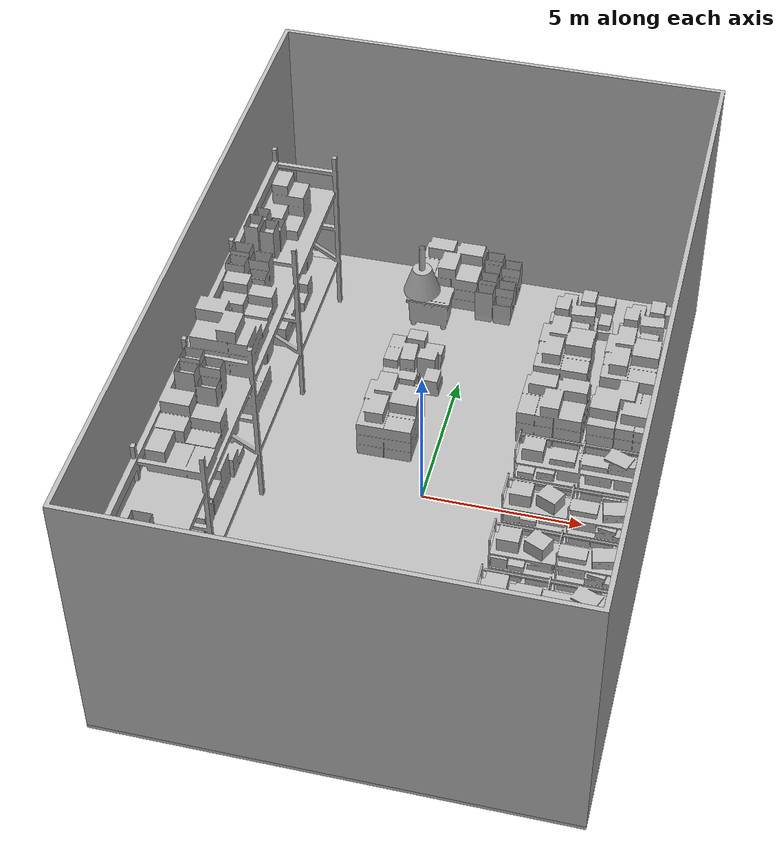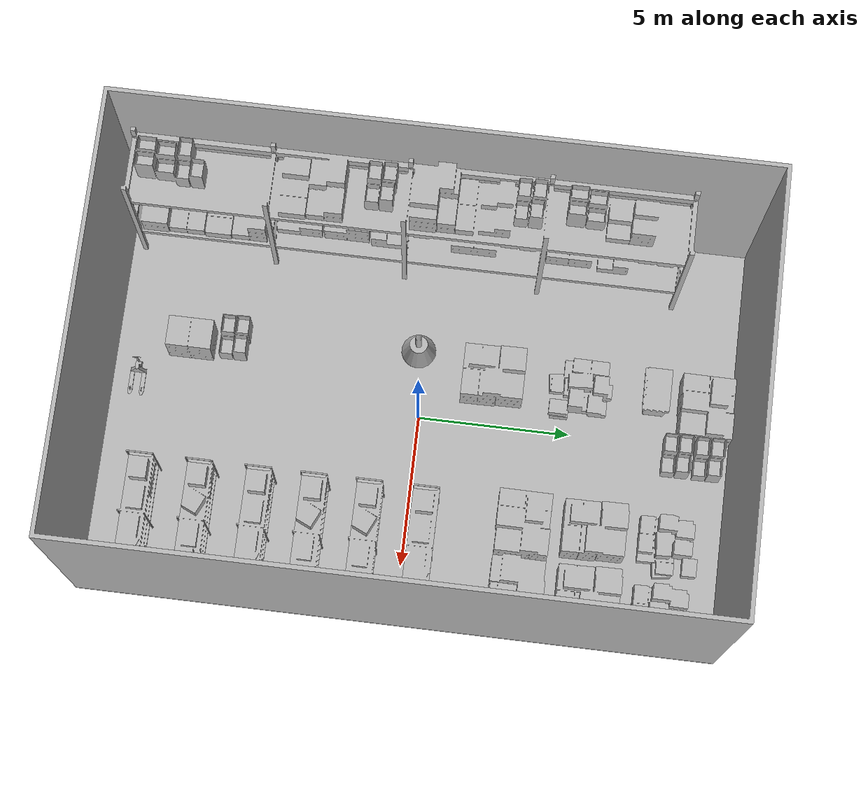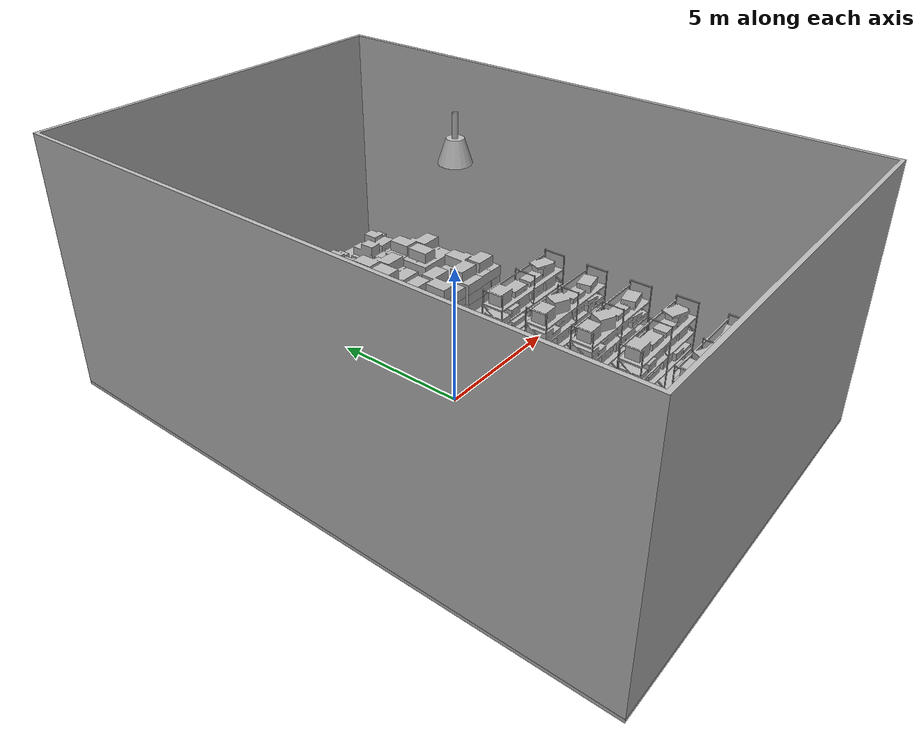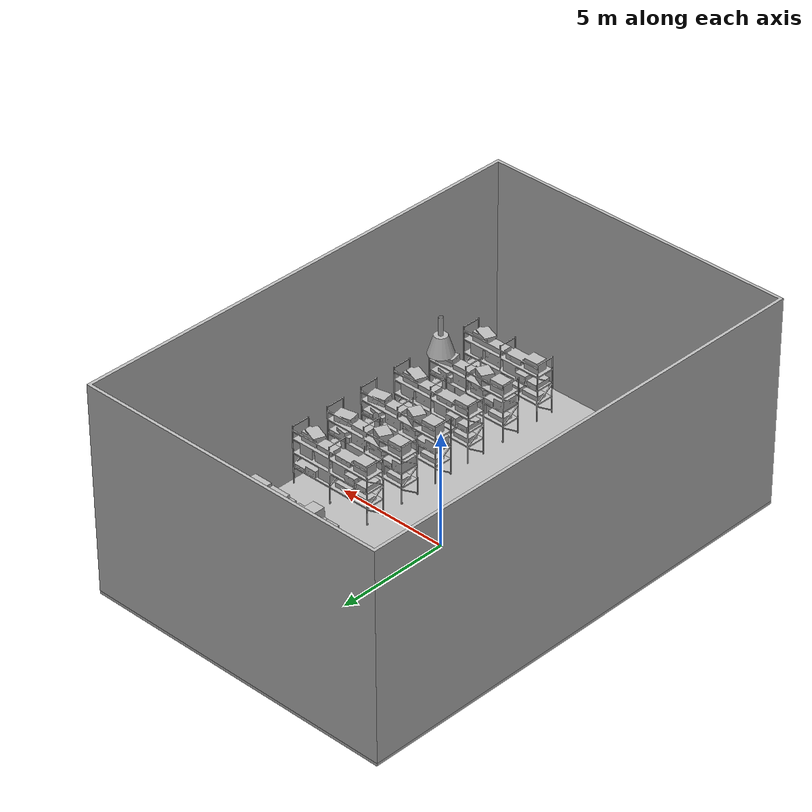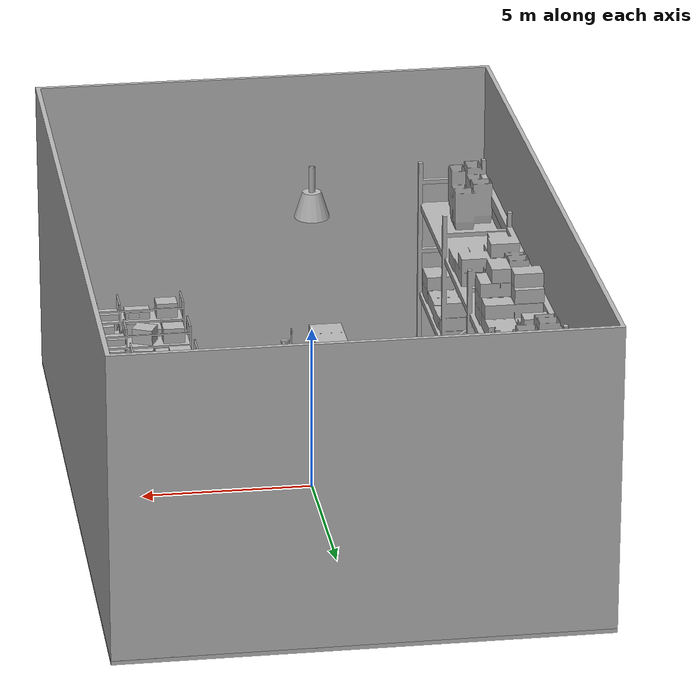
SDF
<?xml version='1.0' encoding='utf-8'?>
<sdf version="1.6">
  <world name="default">
    <physics name="1ms" type="ignored">
      <max_step_size>0.001</max_step_size>
      <real_time_factor>1.0</real_time_factor>
    </physics>
    <plugin
      filename="ignition-gazebo-physics-system"
      name="ignition::gazebo::systems::Physics">
    </plugin>
    <plugin
      filename="ignition-gazebo-user-commands-system"
      name="ignition::gazebo::systems::UserCommands">
    </plugin>
    <plugin
      filename="ignition-gazebo-scene-broadcaster-system"
      name="ignition::gazebo::systems::SceneBroadcaster">
    </plugin>
    <plugin
      filename="ignition-gazebo-contact-system"
      name="ignition::gazebo::systems::Contact">
    </plugin>
    <plugin
      filename="ignition-gazebo-sensors-system"
      name="ignition::gazebo::systems::Sensors">
      <render_engine>ogre2</render_engine>
    </plugin>
    <plugin
      filename="ignition-gazebo-imu-system"
      name="ignition::gazebo::systems::Imu">
    </plugin>

    <gravity>0 0 -9.8</gravity>
    <physics default="0" name="default_physics" type="ode">
      <max_step_size>0.001</max_step_size>
      <real_time_factor>1</real_time_factor>
      <real_time_update_rate>1000</real_time_update_rate>
    </physics>

        <model name="aws_robomaker_warehouse_ShelfF_01_001">
        <include>
            <uri>model://aws_robomaker_warehouse_ShelfF_01</uri>
        </include>
        <pose frame="">-5.795143 -0.956635 0 0 0 0</pose>
	</model>

        <model name="aws_robomaker_warehouse_WallB_01_001">
        <include>
            <uri>model://aws_robomaker_warehouse_WallB_01</uri>
        </include>
        <pose frame="">0.0 0.0 0 0 0 0</pose>
	</model>

        <model name="aws_robomaker_warehouse_ShelfE_01_001">
        <include>
            <uri>model://aws_robomaker_warehouse_ShelfE_01</uri>
        </include>
        <pose frame="">4.73156 0.57943 0 0 0 0</pose>
	</model>

        <model name="aws_robomaker_warehouse_ShelfE_01_002">
        <include>
            <uri>model://aws_robomaker_warehouse_ShelfE_01</uri>
        </include>
        <pose frame="">4.73156 -4.827049 0 0 0 0</pose>
	</model>

        <model name="aws_robomaker_warehouse_ShelfE_01_003">
        <include>
            <uri>model://aws_robomaker_warehouse_ShelfE_01</uri>
        </include>
        <pose frame="">4.73156 -8.6651 0 0 0 0</pose>
	</model>

        <model name="aws_robomaker_warehouse_ShelfD_01_001">
        <include>
            <uri>model://aws_robomaker_warehouse_ShelfD_01</uri>
        </include>
        <pose frame="">4.73156 -1.242668 0 0 0 0</pose>
	</model>

        <model name="aws_robomaker_warehouse_ShelfD_01_002">
        <include>
            <uri>model://aws_robomaker_warehouse_ShelfD_01</uri>
        </include>
        <pose frame="">4.73156 -3.038551 0 0 0 0</pose>
	</model>

        <model name="aws_robomaker_warehouse_ShelfD_01_003">
        <include>
            <uri>model://aws_robomaker_warehouse_ShelfD_01</uri>
        </include>
        <pose frame="">4.73156 -6.750542 0 0 0 0</pose>
	</model>

        <model name="aws_robomaker_warehouse_GroundB_01_001">
        <include>
            <uri>model://aws_robomaker_warehouse_GroundB_01</uri>
        </include>
        <pose frame="">0.0 0.0 -0.090092 0 0 0</pose>
	</model>

        <model name="aws_robomaker_warehouse_Lamp_01_005">
        <include>
            <uri>model://aws_robomaker_warehouse_Lamp_01</uri>
        </include>
        <pose frame="">0 0 -4 0 0 0</pose>
	</model>

        <model name="aws_robomaker_warehouse_Bucket_01_020">
        <include>
            <uri>model://aws_robomaker_warehouse_Bucket_01</uri>
        </include>
        <pose frame="">0.433449 9.631706 0 0 0 -1.563161</pose>
	</model>

        <model name="aws_robomaker_warehouse_Bucket_01_021">
        <include>
            <uri>model://aws_robomaker_warehouse_Bucket_01</uri>
        </include>
        <pose frame="">-1.8321 -6.3752 0 0 0 -1.563161</pose>
	</model>

        <model name="aws_robomaker_warehouse_Bucket_01_022">
        <include>
            <uri>model://aws_robomaker_warehouse_Bucket_01</uri>
        </include>
        <pose frame="">0.433449 8.59 0 0 0 -1.563161</pose>
	</model>

  <model name='aws_robomaker_warehouse_ClutteringA_01_016'>
        <include>
            <uri>model://aws_robomaker_warehouse_ClutteringA_01</uri>
        </include>
        <pose frame=''>5.708138 8.616844 -0.017477 0 0 0</pose>
	</model>

      <model name='aws_robomaker_warehouse_ClutteringA_01_017'>
        <include>
            <uri>model://aws_robomaker_warehouse_ClutteringA_01</uri>
        </include>
        <pose frame=''>3.408638 8.616844 -0.017477 0 0 0</pose>
	</model>

      <model name='aws_robomaker_warehouse_ClutteringA_01_018'>
        <include>
            <uri>model://aws_robomaker_warehouse_ClutteringA_01</uri>
        </include>
        <pose frame=''>-1.491287 5.222435 -0.017477 0 0 -1.583185</pose>
	</model>

     <model name="aws_robomaker_warehouse_ClutteringC_01_027">
        <include>
            <uri>model://aws_robomaker_warehouse_ClutteringC_01</uri>
        </include>
        <pose frame="">3.324959 3.822449 -0.012064 0 0 1.563871</pose>
	</model>

     <model name="aws_robomaker_warehouse_ClutteringC_01_028">
        <include>
            <uri>model://aws_robomaker_warehouse_ClutteringC_01</uri>
        </include>
        <pose frame="">5.54171 3.816475 -0.015663 0 0 -1.583191</pose>
	</model>

     <model name="aws_robomaker_warehouse_ClutteringC_01_029">
        <include>
            <uri>model://aws_robomaker_warehouse_ClutteringC_01</uri>
        </include>
        <pose frame="">5.384239 6.137154 0 0 0 3.150000</pose>
	</model>

     <model name="aws_robomaker_warehouse_ClutteringC_01_030">
        <include>
            <uri>model://aws_robomaker_warehouse_ClutteringC_01</uri>
        </include>
        <pose frame="">3.236 6.137154 0 0 0 3.150000</pose>
	</model>

     <model name="aws_robomaker_warehouse_ClutteringC_01_031">
        <include>
            <uri>model://aws_robomaker_warehouse_ClutteringC_01</uri>
        </include>
        <pose frame="">-1.573677 2.301994 -0.015663 0 0 -3.133191</pose>
	</model>

     <model name="aws_robomaker_warehouse_ClutteringC_01_032">
        <include>
            <uri>model://aws_robomaker_warehouse_ClutteringC_01</uri>
        </include>
        <pose frame="">-1.2196 9.407 -0.015663 0 0 1.563871</pose>
	</model>

     <model name='aws_robomaker_warehouse_ClutteringD_01_005'>
        <include>
            <uri>model://aws_robomaker_warehouse_ClutteringD_01</uri>
        </include>
        <pose frame=''>-1.634682 -7.811813 -0.319559 0 0 0</pose>
	</model>

      <model name='aws_robomaker_warehouse_TrashCanC_01_002'>
        <include>
            <uri>model://aws_robomaker_warehouse_TrashCanC_01</uri>
        </include>
        <pose frame=''>-1.592441 7.715420 0 0 0 0</pose>
	</model>

      <model name='aws_robomaker_warehouse_PalletJackB_01_001'>
        <include>
            <uri>model://aws_robomaker_warehouse_PalletJackB_01</uri>
        </include>
        <pose frame=''>-0.276098 -9.481944 0.023266 0 0 0</pose>
	</model>

    <light name="Warehouse_CeilingLight_003" type="point">
      <pose frame="">0 0 9 0 0 0</pose>
      <diffuse>0.5 0.5 0.5 1</diffuse>
      <specular>0.2 0.2 0.2 1</specular>
      <attenuation>
        <range>80</range>
        <constant>0.3</constant>
        <linear>0.01</linear>
        <quadratic>0.001</quadratic>
      </attenuation>
      <cast_shadows>1</cast_shadows>
      <direction>0.1 0.1 -1</direction>
    </light>

    <gui fullscreen='0'>
      <camera name='user_camera'>
        <pose frame=''>-4.70385 10.895 16.2659 -0 0.921795 -1.12701</pose>
        <view_controller>orbit</view_controller>
        <projection_type>perspective</projection_type>
      </camera>
    </gui>
  </world>
</sdf>

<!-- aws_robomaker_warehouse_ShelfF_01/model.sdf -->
<sdf version="1.6">
  <model name="aws_robomaker_warehouse_ShelfF_01">
    <link name="link">
      <inertial>
        <mass>30</mass>
        <inertia>
          <ixx>907.144</ixx>
          <ixy>0</ixy>
          <ixz>0</ixz>
          <iyy>104.950</iyy>
          <iyz>0</iyz>
          <izz>824.248</izz>
        </inertia>
      </inertial>
      <collision name="collision">
        <geometry>
          <mesh>
            <uri>file://models/aws_robomaker_warehouse_ShelfF_01/meshes/aws_robomaker_warehouse_ShelfF_01_collision.DAE</uri>
            <scale>1 1 1</scale>
          </mesh>
        </geometry>
		<surface>
          <friction>
            <ode>
              <mu>0.2</mu>
              <mu2>0.2</mu2>
              <fdir1>0 0 0</fdir1>
              <slip1>0</slip1>
              <slip2>0</slip2>
            </ode>
        </friction>
          </surface>
      </collision>
      <visual name="visual">
	    <geometry>
          <mesh>
            <uri>file://models/aws_robomaker_warehouse_ShelfF_01/meshes/aws_robomaker_warehouse_ShelfF_01_visual.DAE</uri>
          </mesh>
        </geometry>
      <meta> <layer> 1 </layer></meta>
</visual>
    </link>
<static>1</static>
  </model>
</sdf>

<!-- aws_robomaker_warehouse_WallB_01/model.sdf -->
<sdf version="1.6">
  <model name="aws_robomaker_warehouse_WallB_01">
    <link name="link">
      <inertial>
        <mass>1000</mass>
        <inertia>
          <ixx>840083.33</ixx>
          <ixy>0</ixy>
          <ixz>0</ixz>
          <iyy>475500.0</iyy>
          <iyz>0</iyz>
          <izz>1302083.33</izz>
        </inertia>
      </inertial>
      <collision name="collision">
        <geometry>
          <mesh>
            <uri>file://models/aws_robomaker_warehouse_WallB_01/meshes/aws_robomaker_warehouse_WallB_01_collision.DAE</uri>
            <scale>1 1 1</scale>
          </mesh>
        </geometry>
		<surface>
          <friction>
            <ode>
              <mu>0.5</mu>
              <mu2>0.5</mu2>
              <fdir1>0 0 0</fdir1>
              <slip1>0</slip1>
              <slip2>0</slip2>
            </ode>
        </friction>
          </surface>
      </collision>
      <visual name="visual">
	    <geometry>
          <mesh>
            <uri>file://models/aws_robomaker_warehouse_WallB_01/meshes/aws_robomaker_warehouse_WallB_01_visual.DAE</uri>
          </mesh>
        </geometry>
      <meta> <layer> 2 </layer></meta>
</visual>
    </link>
<static>1</static>
  </model>
</sdf>

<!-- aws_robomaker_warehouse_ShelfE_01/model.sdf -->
<sdf version="1.6">
  <model name="aws_robomaker_warehouse_ShelfE_01">
    <link name="link">
      <inertial>
        <mass>30</mass>
        <inertia>
          <ixx>907.144</ixx>
          <ixy>0</ixy>
          <ixz>0</ixz>
          <iyy>104.950</iyy>
          <iyz>0</iyz>
          <izz>824.248</izz>
        </inertia>
      </inertial>
      <collision name="collision">
        <geometry>
          <mesh>
            <uri>file://models/aws_robomaker_warehouse_ShelfE_01/meshes/aws_robomaker_warehouse_ShelfE_01_collision.DAE</uri>
            <scale>1 1 1</scale>
          </mesh>
        </geometry>
		<surface>
          <friction>
            <ode>
              <mu>0.2</mu>
              <mu2>0.2</mu2>
              <fdir1>0 0 0</fdir1>
              <slip1>0</slip1>
              <slip2>0</slip2>
            </ode>
        </friction>
          </surface>
      </collision>
      <visual name="visual">
	    <geometry>
          <mesh>
            <uri>file://models/aws_robomaker_warehouse_ShelfE_01/meshes/aws_robomaker_warehouse_ShelfE_01_visual.DAE</uri>
          </mesh>
        </geometry>
      <meta> <layer> 1 </layer></meta>
</visual>
    </link>
<static>1</static>
  </model>
</sdf>

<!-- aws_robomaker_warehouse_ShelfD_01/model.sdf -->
<sdf version="1.6">
  <model name="aws_robomaker_warehouse_ShelfD_01">
    <link name="link">
      <inertial>
        <mass>30</mass>
        <inertia>
          <ixx>907.144</ixx>
          <ixy>0</ixy>
          <ixz>0</ixz>
          <iyy>104.950</iyy>
          <iyz>0</iyz>
          <izz>824.248</izz>
        </inertia>
      </inertial>
      <collision name="collision">
        <geometry>
          <mesh>
            <uri>file://models/aws_robomaker_warehouse_ShelfD_01/meshes/aws_robomaker_warehouse_ShelfD_01_collision.DAE</uri>
            <scale>1 1 1</scale>
          </mesh>
        </geometry>
		<surface>
          <friction>
            <ode>
              <mu>0.2</mu>
              <mu2>0.2</mu2>
              <fdir1>0 0 0</fdir1>
              <slip1>0</slip1>
              <slip2>0</slip2>
            </ode>
        </friction>
          </surface>
      </collision>
      <visual name="visual">
	    <geometry>
          <mesh>
            <uri>file://models/aws_robomaker_warehouse_ShelfD_01/meshes/aws_robomaker_warehouse_ShelfD_01_visual.DAE</uri>
          </mesh>
        </geometry>
      <meta> <layer> 1 </layer></meta>
</visual>
    </link>
<static>1</static>
  </model>
</sdf>

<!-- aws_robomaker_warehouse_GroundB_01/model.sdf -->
<sdf version="1.6">
  <model name="aws_robomaker_warehouse_GroundB_01">
    <link name="link">
      <inertial>
        <mass>1000</mass>
		<inertia>
          <ixx>1200083.33</ixx>
          <ixy>0</ixy>
          <ixz>0</ixz>
          <iyy>8333416.66</iyy>
          <iyz>0</iyz>
          <izz>2033333.33</izz>
        </inertia>
      </inertial>
      <collision name="collision">
        <geometry>
          <mesh>
            <uri>model://aws_robomaker_warehouse_GroundB_01/meshes/aws_robomaker_warehouse_GroundB_01_collision.DAE</uri>
            <scale>1 1 1</scale>
          </mesh>
        </geometry>
        <surface>
          <friction>
            <ode>
              <mu>100</mu>
              <mu2>50</mu2>
              <fdir1>0 0 0</fdir1>
              <slip1>0</slip1>
              <slip2>0</slip2>
            </ode>
          </friction>
        </surface>
      </collision>
      <visual name="visual">
	    <geometry>
          <mesh>
            <uri>model://aws_robomaker_warehouse_GroundB_01/meshes/aws_robomaker_warehouse_GroundB_01_visual.DAE</uri>
          </mesh>
        </geometry>
      <meta> <layer> 1 </layer></meta>
</visual>
    </link>
<static>1</static>
  </model>
</sdf>

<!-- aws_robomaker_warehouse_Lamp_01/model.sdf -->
<sdf version="1.6">
  <model name="aws_robomaker_warehouse_Lamp_01">
    <link name="link">
      <inertial>
        <mass>30</mass>
        <inertia>
          <ixx>907.144</ixx>
          <ixy>0</ixy>
          <ixz>0</ixz>
          <iyy>104.950</iyy>
          <iyz>0</iyz>
          <izz>824.248</izz>
        </inertia>
      </inertial>
      <collision name="collision">
        <geometry>
          <mesh>
            <uri>file://models/aws_robomaker_warehouse_Lamp_01/meshes/aws_robomaker_warehouse_Lamp_01_collision.DAE</uri>
            <scale>1 1 1</scale>
          </mesh>
        </geometry>
		<surface>
          <friction>
            <ode>
              <mu>0.2</mu>
              <mu2>0.2</mu2>
              <fdir1>0 0 0</fdir1>
              <slip1>0</slip1>
              <slip2>0</slip2>
            </ode>
        </friction>
          </surface>
      </collision>
      <visual name="visual">
	    <geometry>
          <mesh>
            <uri>file://models/aws_robomaker_warehouse_Lamp_01/meshes/aws_robomaker_warehouse_Lamp_01_visual.DAE</uri>
          </mesh>
        </geometry>
      <meta> <layer> 1 </layer></meta>
</visual>
    </link>
<static>1</static>
  </model>
</sdf>

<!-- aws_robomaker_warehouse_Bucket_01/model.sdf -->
<sdf version='1.6'>
  <model name='aws_robomaker_warehouse_Bucket_01'>
    <link name='body'>
	  <inertial>
        <mass>2</mass>
        <pose frame=''>0 0 0 0 0 0</pose>
        <inertia>
          <ixx>0.570</ixx>
          <ixy>0</ixy>
          <ixz>0</ixz>
          <iyy>0.474</iyy>
          <iyz>0</iyz>
          <izz>0.391</izz>
        </inertia>
      </inertial>
      <pose frame=''>0 0 0 0 -0 0</pose>
      <self_collide>0</self_collide>
      <kinematic>0</kinematic>
      <gravity>1</gravity>
      <visual name='visual'>
        <geometry>
          <mesh>
            <uri>file://models/aws_robomaker_warehouse_Bucket_01/meshes/aws_robomaker_warehouse_Bucket_01_visual.DAE</uri>
          </mesh>
        </geometry>
		<meta> <layer> 1 </layer></meta>
      </visual>
      <collision name='collision_0'>
        <laser_retro>0</laser_retro>
        <max_contacts>10</max_contacts>
        <pose frame=''>0 0 0 0 -0 0</pose>
        <geometry>
          <mesh>
            <uri>file://models/aws_robomaker_warehouse_Bucket_01/meshes/aws_robomaker_warehouse_Bucket_01_collision.DAE</uri>
            <scale>1 1 1</scale>
          </mesh>
        </geometry>
		<surface>
          <friction>
            <ode>
              <mu>0.4</mu>
              <mu2>0.4</mu2>
              <fdir1>0 0 0</fdir1>
              <slip1>0</slip1>
              <slip2>0</slip2>
            </ode>
            <torsional>
              <coefficient>1</coefficient>
              <patch_radius>0</patch_radius>
              <surface_radius>0</surface_radius>
              <use_patch_radius>1</use_patch_radius>
              <ode>
                <slip>0</slip>
              </ode>
            </torsional>
          </friction>
        </surface>
      </collision>
    </link>
    <static>true</static>
  </model>
</sdf>

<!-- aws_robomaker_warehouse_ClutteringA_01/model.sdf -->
<sdf version="1.6">
  <model name="aws_robomaker_warehouse_ClutteringA_01">
    <link name="link">
      <inertial>
        <mass>2</mass>
        <inertia>
          <ixx>0.841</ixx>
          <ixy>0</ixy>
          <ixz>0</ixz>
          <iyy>0.954</iyy>
          <iyz>0</iyz>
          <izz>1.422</izz>
        </inertia>
      </inertial>
      <collision name="collision">
        <geometry>
          <mesh>
            <uri>file://models/aws_robomaker_warehouse_ClutteringA_01/meshes/aws_robomaker_warehouse_ClutteringA_01_collision.DAE</uri>
            <scale>1 1 1</scale>
          </mesh>
        </geometry>
        <surface>
          <friction>
            <ode>
              <mu>0.6</mu>
              <mu2>0.6</mu2>
              <fdir1>0 0 0</fdir1>
              <slip1>0</slip1>
              <slip2>0</slip2>
            </ode>
            <torsional>
              <coefficient>1</coefficient>
              <patch_radius>0</patch_radius>
              <surface_radius>0</surface_radius>
              <use_patch_radius>1</use_patch_radius>
              <ode>
                <slip>0</slip>
              </ode>
            </torsional>
          </friction>
        </surface>
      </collision>
      <visual name="visual">
        <geometry>
          <mesh>
            <uri>file://models/aws_robomaker_warehouse_ClutteringA_01/meshes/aws_robomaker_warehouse_ClutteringA_01_visual.DAE</uri>
          </mesh>
        </geometry>
        <meta> <layer> 1 </layer></meta>
      </visual>
    </link>
    <static>1</static>
  </model>
</sdf>

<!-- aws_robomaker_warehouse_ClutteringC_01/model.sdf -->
<sdf version="1.6">
  <model name="aws_robomaker_warehouse_ClutteringC_01">
    <link name="link">
      <inertial>
        <mass>1</mass>
        <inertia>
          <ixx>1.558</ixx>
          <ixy>0</ixy>
          <ixz>0</ixz>
          <iyy>1.821</iyy>
          <iyz>0</iyz>
          <izz>1.892</izz>
        </inertia>
      </inertial>
      <collision name="collision">
        <geometry>
          <mesh>
            <uri>model://aws_robomaker_warehouse_ClutteringC_01/meshes/aws_robomaker_warehouse_ClutteringC_01_collision.DAE</uri>
            <scale>1 1 1</scale>
          </mesh>
        </geometry>
		<surface>
          <friction>
            <ode>
              <mu>0.6</mu>
              <mu2>0.6</mu2>
              <fdir1>0 0 0</fdir1>
              <slip1>0</slip1>
              <slip2>0</slip2>
            </ode>
            <torsional>
              <coefficient>1</coefficient>
              <patch_radius>0</patch_radius>
              <surface_radius>0</surface_radius>
              <use_patch_radius>1</use_patch_radius>
              <ode>
                <slip>0</slip>
              </ode>
            </torsional>
          </friction>
        </surface>
      </collision>
      <visual name="visual">
	    <geometry>
          <mesh>
            <uri>model://aws_robomaker_warehouse_ClutteringC_01/meshes/aws_robomaker_warehouse_ClutteringC_01_visual.DAE</uri>
          </mesh>
        </geometry>
        <meta> <layer> 1 </layer></meta>
      </visual>
    </link>
    <static>1</static>
  </model>
</sdf>

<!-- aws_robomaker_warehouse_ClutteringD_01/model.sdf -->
<sdf version="1.6">
  <model name="aws_robomaker_warehouse_ClutteringD_01">
    <link name="link">
      <inertial>
        <mass>1</mass>
        <inertia>
          <ixx>1.558</ixx>
          <ixy>0</ixy>
          <ixz>0</ixz>
          <iyy>1.821</iyy>
          <iyz>0</iyz>
          <izz>1.892</izz>
        </inertia>
      </inertial>
      <collision name="collision">
        <geometry>
          <mesh>
            <uri>file://models/aws_robomaker_warehouse_ClutteringD_01/meshes/aws_robomaker_warehouse_ClutteringD_01_collision.DAE</uri>
            <scale>1 1 1</scale>
          </mesh>
        </geometry>
        <surface>
          <friction>
            <ode>
              <mu>0.6</mu>
              <mu2>0.6</mu2>
              <fdir1>0 0 0</fdir1>
              <slip1>0</slip1>
              <slip2>0</slip2>
            </ode>
            <torsional>
              <coefficient>1</coefficient>
              <patch_radius>0</patch_radius>
              <surface_radius>0</surface_radius>
              <use_patch_radius>1</use_patch_radius>
              <ode>
                <slip>0</slip>
              </ode>
            </torsional>
          </friction>
        </surface>
      </collision>
      <visual name="visual">
	    <geometry>
          <mesh>
            <uri>file://models/aws_robomaker_warehouse_ClutteringD_01/meshes/aws_robomaker_warehouse_ClutteringD_01_visual.DAE</uri>
          </mesh>
        </geometry>
      <meta> <layer> 1 </layer></meta>
</visual>
    </link>
<static>1</static>
  </model>
</sdf>

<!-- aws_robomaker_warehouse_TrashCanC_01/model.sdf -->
<sdf version="1.6">
  <model name="aws_robomaker_warehouse_TrashCanC_01">
    <link name="link">
      <inertial>
        <mass>1</mass>
        <inertia>
          <ixx>0.200</ixx>
          <ixy>0</ixy>
          <ixz>0</ixz>
          <iyy>0.308</iyy>
          <iyz>0</iyz>
          <izz>0.240</izz>
        </inertia>
      </inertial>
      <collision name="collision">
        <geometry>
          <mesh>
            <uri>file://models/aws_robomaker_warehouse_TrashCanC_01/meshes/aws_robomaker_warehouse_TrashCanC_01_collision.DAE</uri>
            <scale>1 1 1</scale>
          </mesh>
        </geometry>
		<surface>
          <friction>
            <ode>
              <mu>0.4</mu>
              <mu2>0.4</mu2>
              <fdir1>0 0 0</fdir1>
              <slip1>0</slip1>
              <slip2>0</slip2>
            </ode>
        </friction>
          </surface>
      </collision>
      <visual name="visual">
	    <geometry>
          <mesh>
            <uri>file://models/aws_robomaker_warehouse_TrashCanC_01/meshes/aws_robomaker_warehouse_TrashCanC_01_visual.DAE</uri>
          </mesh>
        </geometry>
      <meta> <layer> 1 </layer></meta>
</visual>
    </link>
<static>1</static>
  </model>
</sdf>

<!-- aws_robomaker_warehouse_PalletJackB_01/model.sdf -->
<sdf version="1.6">
  <model name="aws_robomaker_warehouse_PalletJackB_01">
    <link name="link">
      <inertial>
        <mass>2</mass>
        <inertia>
          <ixx>0.277</ixx>
          <ixy>0</ixy>
          <ixz>0</ixz>
          <iyy>0.452</iyy>
          <iyz>0</iyz>
          <izz>0.268</izz>
        </inertia>
      </inertial>
      <collision name="collision">
        <geometry>
          <mesh>
            <uri>model://aws_robomaker_warehouse_PalletJackB_01/meshes/aws_robomaker_warehouse_PalletJackB_01_collision.DAE</uri>
            <scale>1 1 1</scale>
          </mesh>
        </geometry>
		<surface>
          <friction>
            <ode>
              <mu>0.2</mu>
              <mu2>0.2</mu2>
              <fdir1>0 0 0</fdir1>
              <slip1>0</slip1>
              <slip2>0</slip2>
            </ode>
        </friction>
          </surface>
      </collision>
      <visual name="visual">
	    <geometry>
          <mesh>
            <uri>model://aws_robomaker_warehouse_PalletJackB_01/meshes/aws_robomaker_warehouse_PalletJackB_01_visual.DAE</uri>
          </mesh>
        </geometry>
      <meta> <layer> 1 </layer></meta>
</visual>
    </link>
<static>1</static>
  </model>
</sdf>
